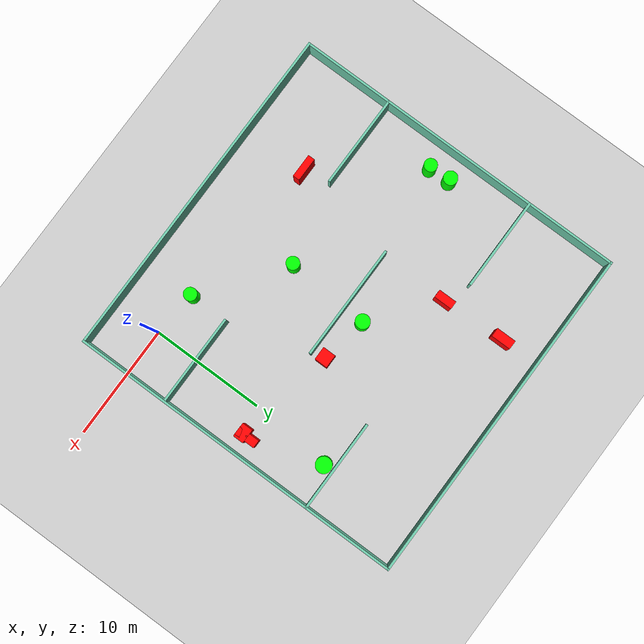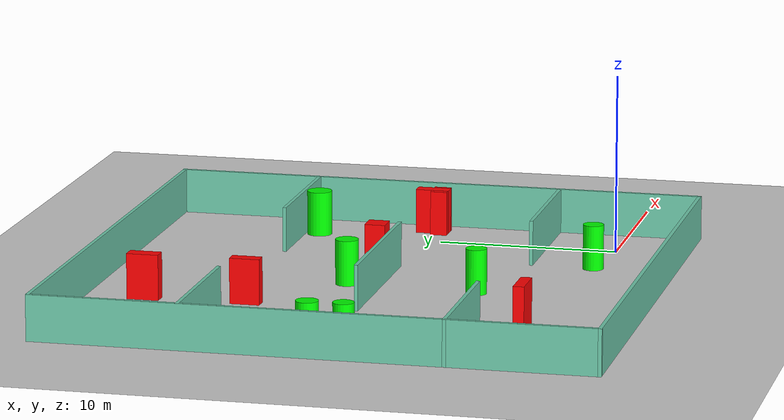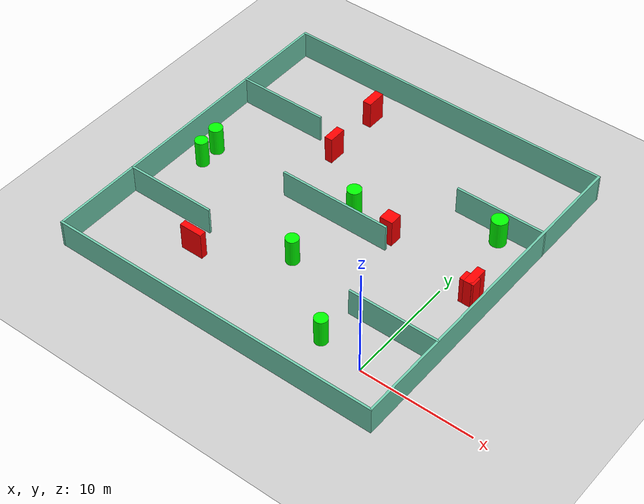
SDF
<sdf version="1.7">
 <world name="default">
  <light name="sun" type="directional">
   <pose>0 0 10 0 -0 0</pose>
   <diffuse>0.8 0.8 0.8 1</diffuse>
   <specular>0.2 0.2 0.2 1</specular>
   <attenuation>
    <range>1000</range>
    <constant>0.9</constant>
    <linear>0.01</linear>
    <quadratic>0.001</quadratic>
   </attenuation>
   <direction>-0.5 0.1 -0.9</direction>
   <spot><inner_angle>0</inner_angle><outer_angle>0</outer_angle><falloff>0</falloff></spot>
  </light>
  <model name="ground_plane">
   <static>1</static>
   <link name="link">
    <collision name="collision">
     <geometry><plane><normal>0 0 1</normal><size>100 100</size></plane></geometry>
     <surface>
      <contact><collide_bitmask>65535</collide_bitmask></contact>
      <friction><ode><mu>100</mu><mu2>50</mu2></ode></friction>
     </surface>
    </collision>
    <visual name="visual">
     <cast_shadows>0</cast_shadows>
     <geometry><plane><normal>0 0 1</normal><size>100 100</size></plane></geometry>
     <material>
      <script><uri>file://media/materials/scripts/gazebo.material</uri><name>Gazebo/Grey</name></script>
     </material>
    </visual>
   </link>
  </model>
  <gravity>0 0 -9.8</gravity>
  <magnetic_field>6e-06 2.3e-05 -4.2e-05</magnetic_field>
  <atmosphere type="adiabatic"/>
  <physics type="ode">
   <max_step_size>0.001</max_step_size>
   <real_time_factor>1</real_time_factor>
   <real_time_update_rate>1000</real_time_update_rate>
  </physics>
  <scene><ambient>0.4 0.4 0.4 1</ambient><background>0.7 0.7 0.7 1</background><shadows>1</shadows></scene>
  <spherical_coordinates>
   <surface_model>EARTH_WGS84</surface_model>
   <latitude_deg>0</latitude_deg>
   <longitude_deg>0</longitude_deg>
   <elevation>0</elevation>
   <heading_deg>0</heading_deg>
  </spherical_coordinates>
  <model name="my_base_walls">
   <link name="Wall_10">
    <collision name="Wall_10_Collision">
     <geometry><box><size>8.2 0.2 2.5</size></box></geometry>
     <pose>0 0 1.25 0 -0 0</pose>
    </collision>
    <visual name="Wall_10_Visual">
     <pose>0 0 1.25 0 -0 0</pose>
     <geometry><box><size>8.2 0.2 2.5</size></box></geometry>
     <material>
      <script><uri>file://media/materials/scripts/gazebo.material</uri><name>Gazebo/Grey</name></script>
      <ambient>0.435294 0.796078 0.67451 1</ambient>
     </material>
     <meta><layer>0</layer></meta>
    </visual>
    <pose>-11 -7 0 0 -0 0</pose>
   </link>
   <link name="Wall_12">
    <collision name="Wall_12_Collision">
     <geometry><box><size>8.2 0.2 2.5</size></box></geometry>
     <pose>0 0 1.25 0 -0 0</pose>
    </collision>
    <visual name="Wall_12_Visual">
     <pose>0 0 1.25 0 -0 0</pose>
     <geometry><box><size>8.2 0.2 2.5</size></box></geometry>
     <material>
      <script><uri>file://media/materials/scripts/gazebo.material</uri><name>Gazebo/Grey</name></script>
      <ambient>0.435294 0.796078 0.67451 1</ambient>
     </material>
     <meta><layer>0</layer></meta>
    </visual>
    <pose>-11 7 0 0 -0 0</pose>
   </link>
   <link name="Wall_14">
    <collision name="Wall_14_Collision">
     <geometry><box><size>8.2 0.2 2.5</size></box></geometry>
     <pose>0 0 1.25 0 -0 0</pose>
    </collision>
    <visual name="Wall_14_Visual">
     <pose>0 0 1.25 0 -0 0</pose>
     <geometry><box><size>8.2 0.2 2.5</size></box></geometry>
     <material>
      <script><uri>file://media/materials/scripts/gazebo.material</uri><name>Gazebo/Grey</name></script>
      <ambient>0.435294 0.796078 0.67451 1</ambient>
     </material>
     <meta><layer>0</layer></meta>
    </visual>
    <pose>11 7 0 0 -0 3.14159</pose>
   </link>
   <link name="Wall_16">
    <collision name="Wall_16_Collision">
     <geometry><box><size>10.2 0.2 2.5</size></box></geometry>
     <pose>0 0 1.25 0 -0 0</pose>
    </collision>
    <visual name="Wall_16_Visual">
     <pose>0 0 1.25 0 -0 0</pose>
     <geometry><box><size>10.2 0.2 2.5</size></box></geometry>
     <material>
      <script><uri>file://media/materials/scripts/gazebo.material</uri><name>Gazebo/Grey</name></script>
      <ambient>0.435294 0.796078 0.67451 1</ambient>
     </material>
     <meta><layer>0</layer></meta>
    </visual>
    <pose>0 0 0 0 -0 3.14159</pose>
   </link>
   <link name="Wall_2">
    <collision name="Wall_2_Collision">
     <geometry><box><size>30.2 0.2 2.5</size></box></geometry>
     <pose>0 0 1.25 0 -0 0</pose>
    </collision>
    <visual name="Wall_2_Visual">
     <pose>0 0 1.25 0 -0 0</pose>
     <geometry><box><size>30.2 0.2 2.5</size></box></geometry>
     <material>
      <script><uri>file://media/materials/scripts/gazebo.material</uri><name>Gazebo/Grey</name></script>
      <ambient>0.435294 0.796078 0.67451 1</ambient>
     </material>
     <meta><layer>0</layer></meta>
    </visual>
    <pose>0 -15 0 0 -0 3.14159</pose>
   </link>
   <link name="Wall_3">
    <collision name="Wall_3_Collision">
     <geometry><box><size>30.2 0.2 2.5</size></box></geometry>
     <pose>0 0 1.25 0 -0 0</pose>
    </collision>
    <visual name="Wall_3_Visual">
     <pose>0 0 1.25 0 -0 0</pose>
     <geometry><box><size>30.2 0.2 2.5</size></box></geometry>
     <material>
      <script><uri>file://media/materials/scripts/gazebo.material</uri><name>Gazebo/Grey</name></script>
      <ambient>0.435294 0.796078 0.67451 1</ambient>
     </material>
     <meta><layer>0</layer></meta>
    </visual>
    <pose>-15 0 0 0 -0 1.5708</pose>
   </link>
   <link name="Wall_4">
    <collision name="Wall_4_Collision">
     <geometry><box><size>30.2 0.2 2.5</size></box></geometry>
     <pose>0 0 1.25 0 -0 0</pose>
    </collision>
    <visual name="Wall_4_Visual">
     <pose>0 0 1.25 0 -0 0</pose>
     <geometry><box><size>30.2 0.2 2.5</size></box></geometry>
     <material>
      <script><uri>file://media/materials/scripts/gazebo.material</uri><name>Gazebo/Grey</name></script>
      <ambient>0.435294 0.796078 0.67451 1</ambient>
     </material>
     <meta><layer>0</layer></meta>
    </visual>
    <pose>0 15 0 0 -0 0</pose>
   </link>
   <link name="Wall_6">
    <collision name="Wall_6_Collision">
     <geometry><box><size>30.2 0.2 2.5</size></box></geometry>
     <pose>0 0 1.25 0 -0 0</pose>
    </collision>
    <visual name="Wall_6_Visual">
     <pose>0 0 1.25 0 -0 0</pose>
     <geometry><box><size>30.2 0.2 2.5</size></box></geometry>
     <material>
      <script><uri>file://media/materials/scripts/gazebo.material</uri><name>Gazebo/Grey</name></script>
      <ambient>0.435294 0.796078 0.67451 1</ambient>
     </material>
     <meta><layer>0</layer></meta>
    </visual>
    <pose>15 0 0 0 -0 1.5708</pose>
   </link>
   <link name="Wall_8">
    <collision name="Wall_8_Collision">
     <geometry><box><size>8.2 0.2 2.5</size></box></geometry>
     <pose>0 0 1.25 0 -0 0</pose>
    </collision>
    <visual name="Wall_8_Visual">
     <pose>0 0 1.25 0 -0 0</pose>
     <geometry><box><size>8.2 0.2 2.5</size></box></geometry>
     <material>
      <script><uri>file://media/materials/scripts/gazebo.material</uri><name>Gazebo/Grey</name></script>
      <ambient>0.435294 0.796078 0.67451 1</ambient>
     </material>
     <meta><layer>0</layer></meta>
    </visual>
    <pose>11 -7 0 0 -0 3.14159</pose>
   </link>
   <static>1</static>
   <pose>-11 11 0 0 -0 0</pose>
  </model>
  <model name="cylinder1">
   <static>1</static>
   <link name="link">
    <inertial>
     <mass>1</mass>
     <inertia><ixx>0.5</ixx><ixy>0</ixy><ixz>0</ixz><iyy>0.5</iyy><iyz>0</iyz><izz>1</izz></inertia>
    </inertial>
    <collision name="collision">
     <geometry><cylinder><radius>0.6326235134200797</radius><length>2.5</length></cylinder></geometry>
    </collision>
    <visual name="visual">
     <geometry><cylinder><radius>0.6326235134200797</radius><length>2.5</length></cylinder></geometry>
     <material>
      <ambient>0 1 0 1</ambient>
      <diffuse>0 1 0 1</diffuse>
      <specular>0.1 0.1 0.1 1</specular>
      <emissive>0 0 0 0</emissive>
     </material>
    </visual>
   </link>
   <pose>-10.447687352203399 12.860028557701902 1.25 0 0 0</pose>
  </model>
  <model name="cylinder2">
   <static>1</static>
   <link name="link">
    <inertial>
     <mass>1</mass>
     <inertia><ixx>0.5</ixx><ixy>0</ixy><ixz>0</ixz><iyy>0.5</iyy><iyz>0</iyz><izz>1</izz></inertia>
    </inertial>
    <collision name="collision">
     <geometry><cylinder><radius>0.5718369582138213</radius><length>2.5</length></cylinder></geometry>
    </collision>
    <visual name="visual">
     <geometry><cylinder><radius>0.5718369582138213</radius><length>2.5</length></cylinder></geometry>
     <material>
      <ambient>0 1 0 1</ambient>
      <diffuse>0 1 0 1</diffuse>
      <specular>0.1 0.1 0.1 1</specular>
      <emissive>0 0 0 0</emissive>
     </material>
    </visual>
   </link>
   <pose>-4.027883850889239 0.5298982895569191 1.25 0 0 0</pose>
  </model>
  <model name="cylinder3">
   <static>1</static>
   <link name="link">
    <inertial>
     <mass>1</mass>
     <inertia><ixx>0.5</ixx><ixy>0</ixy><ixz>0</ixz><iyy>0.5</iyy><iyz>0</iyz><izz>1</izz></inertia>
    </inertial>
    <collision name="collision">
     <geometry><cylinder><radius>0.6978847876534156</radius><length>2.5</length></cylinder></geometry>
    </collision>
    <visual name="visual">
     <geometry><cylinder><radius>0.6978847876534156</radius><length>2.5</length></cylinder></geometry>
     <material>
      <ambient>0 1 0 1</ambient>
      <diffuse>0 1 0 1</diffuse>
      <specular>0.1 0.1 0.1 1</specular>
      <emissive>0 0 0 0</emissive>
     </material>
    </visual>
   </link>
   <pose>0.5002712648977976 17.129566025303042 1.25 0 0 0</pose>
  </model>
  <model name="cylinder4">
   <static>1</static>
   <link name="link">
    <inertial>
     <mass>1</mass>
     <inertia><ixx>0.5</ixx><ixy>0</ixy><ixz>0</ixz><iyy>0.5</iyy><iyz>0</iyz><izz>1</izz></inertia>
    </inertial>
    <collision name="collision">
     <geometry><cylinder><radius>0.6065195631954055</radius><length>2.5</length></cylinder></geometry>
    </collision>
    <visual name="visual">
     <geometry><cylinder><radius>0.6065195631954055</radius><length>2.5</length></cylinder></geometry>
     <material>
      <ambient>0 1 0 1</ambient>
      <diffuse>0 1 0 1</diffuse>
      <specular>0.1 0.1 0.1 1</specular>
      <emissive>0 0 0 0</emissive>
     </material>
    </visual>
   </link>
   <pose>-23.919587757541603 11.674622293765005 1.25 0 0 0</pose>
  </model>
  <model name="cylinder5">
   <static>1</static>
   <link name="link">
    <inertial>
     <mass>1</mass>
     <inertia><ixx>0.5</ixx><ixy>0</ixy><ixz>0</ixz><iyy>0.5</iyy><iyz>0</iyz><izz>1</izz></inertia>
    </inertial>
    <collision name="collision">
     <geometry><cylinder><radius>0.5740314683055507</radius><length>2.5</length></cylinder></geometry>
    </collision>
    <visual name="visual">
     <geometry><cylinder><radius>0.5740314683055507</radius><length>2.5</length></cylinder></geometry>
     <material>
      <ambient>0 1 0 1</ambient>
      <diffuse>0 1 0 1</diffuse>
      <specular>0.1 0.1 0.1 1</specular>
      <emissive>0 0 0 0</emissive>
     </material>
    </visual>
   </link>
   <pose>-10.885801519644332 5.612700519127065 1.25 0 0 0</pose>
  </model>
  <model name="cylinder6">
   <static>1</static>
   <link name="link">
    <inertial>
     <mass>1</mass>
     <inertia><ixx>0.5</ixx><ixy>0</ixy><ixz>0</ixz><iyy>0.5</iyy><iyz>0</iyz><izz>1</izz></inertia>
    </inertial>
    <collision name="collision">
     <geometry><cylinder><radius>0.5653870489380938</radius><length>2.5</length></cylinder></geometry>
    </collision>
    <visual name="visual">
     <geometry><cylinder><radius>0.5653870489380938</radius><length>2.5</length></cylinder></geometry>
     <material>
      <ambient>0 1 0 1</ambient>
      <diffuse>0 1 0 1</diffuse>
      <specular>0.1 0.1 0.1 1</specular>
      <emissive>0 0 0 0</emissive>
     </material>
    </visual>
   </link>
   <pose>-23.822426403660835 9.77470559864047 1.25 0 0 0</pose>
  </model>
  <model name="box1">
   <static>1</static>
   <link name="link">
    <inertial>
     <mass>1</mass>
     <inertia><ixx>0.083</ixx><ixy>0</ixy><ixz>0</ixz><iyy>0.083</iyy><iyz>0</iyz><izz>0.083</izz></inertia>
    </inertial>
    <collision name="collision">
     <geometry><box><size>0.7082001337500283 1.63127324716522 2.5</size></box></geometry>
    </collision>
    <visual name="visual">
     <geometry><box><size>0.7082001337500283 1.63127324716522 2.5</size></box></geometry>
     <material>
      <ambient>1 0 0 1</ambient>
      <diffuse>1 0 0 1</diffuse>
      <specular>0.1 0.1 0.1 1</specular>
      <emissive>0 0 0 0</emissive>
     </material>
    </visual>
    <sensor name="my_contact" type="contact">
     <contact><collision>box_collision</collision><topic>__default_topic__</topic></contact>
    </sensor>
   </link>
   <pose>-15.774716043908663 17.09883647776653 1.25 0 0 0</pose>
  </model>
  <model name="box2">
   <static>1</static>
   <link name="link">
    <inertial>
     <mass>1</mass>
     <inertia><ixx>0.083</ixx><ixy>0</ixy><ixz>0</ixz><iyy>0.083</iyy><iyz>0</iyz><izz>0.083</izz></inertia>
    </inertial>
    <collision name="collision">
     <geometry><box><size>0.7840444708132202 1.749478854988398 2.5</size></box></geometry>
    </collision>
    <visual name="visual">
     <geometry><box><size>0.7840444708132202 1.749478854988398 2.5</size></box></geometry>
     <material>
      <ambient>1 0 0 1</ambient>
      <diffuse>1 0 0 1</diffuse>
      <specular>0.1 0.1 0.1 1</specular>
      <emissive>0 0 0 0</emissive>
     </material>
    </visual>
    <sensor name="my_contact" type="contact">
     <contact><collision>box_collision</collision><topic>__default_topic__</topic></contact>
    </sensor>
   </link>
   <pose>-16.00373247137825 22.659798667156 1.25 0 0 0</pose>
  </model>
  <model name="box3">
   <static>1</static>
   <link name="link">
    <inertial>
     <mass>1</mass>
     <inertia><ixx>0.083</ixx><ixy>0</ixy><ixz>0</ixz><iyy>0.083</iyy><iyz>0</iyz><izz>0.083</izz></inertia>
    </inertial>
    <collision name="collision">
     <geometry><box><size>1.2705958014821177 0.9392378080669088 2.5</size></box></geometry>
    </collision>
    <visual name="visual">
     <geometry><box><size>1.2705958014821177 0.9392378080669088 2.5</size></box></geometry>
     <material>
      <ambient>1 0 0 1</ambient>
      <diffuse>1 0 0 1</diffuse>
      <specular>0.1 0.1 0.1 1</specular>
      <emissive>0 0 0 0</emissive>
     </material>
    </visual>
    <sensor name="my_contact" type="contact">
     <contact><collision>box_collision</collision><topic>__default_topic__</topic></contact>
    </sensor>
   </link>
   <pose>2.279328487519514 10.50383445668394 1.25 0 0 0</pose>
  </model>
  <model name="box4">
   <static>1</static>
   <link name="link">
    <inertial>
     <mass>1</mass>
     <inertia><ixx>0.083</ixx><ixy>0</ixy><ixz>0</ixz><iyy>0.083</iyy><iyz>0</iyz><izz>0.083</izz></inertia>
    </inertial>
    <collision name="collision">
     <geometry><box><size>0.7190314804204597 1.8527979499987017 2.5</size></box></geometry>
    </collision>
    <visual name="visual">
     <geometry><box><size>0.7190314804204597 1.8527979499987017 2.5</size></box></geometry>
     <material>
      <ambient>1 0 0 1</ambient>
      <diffuse>1 0 0 1</diffuse>
      <specular>0.1 0.1 0.1 1</specular>
      <emissive>0 0 0 0</emissive>
     </material>
    </visual>
    <sensor name="my_contact" type="contact">
     <contact><collision>box_collision</collision><topic>__default_topic__</topic></contact>
    </sensor>
   </link>
   <pose>2.3653026143941354 10.950912736957536 1.25 0 0 0</pose>
  </model>
  <model name="box5">
   <static>1</static>
   <link name="link">
    <inertial>
     <mass>1</mass>
     <inertia><ixx>0.083</ixx><ixy>0</ixy><ixz>0</ixz><iyy>0.083</iyy><iyz>0</iyz><izz>0.083</izz></inertia>
    </inertial>
    <collision name="collision">
     <geometry><box><size>2.076020290729205 0.5926418230110702 2.5</size></box></geometry>
    </collision>
    <visual name="visual">
     <geometry><box><size>2.076020290729205 0.5926418230110702 2.5</size></box></geometry>
     <material>
      <ambient>1 0 0 1</ambient>
      <diffuse>1 0 0 1</diffuse>
      <specular>0.1 0.1 0.1 1</specular>
      <emissive>0 0 0 0</emissive>
     </material>
    </visual>
    <sensor name="my_contact" type="contact">
     <contact><collision>box_collision</collision><topic>__default_topic__</topic></contact>
    </sensor>
   </link>
   <pose>-17.584110382976 1.7092963719617629 1.25 0 0 0</pose>
  </model>
  <model name="box6">
   <static>1</static>
   <link name="link">
    <inertial>
     <mass>1</mass>
     <inertia><ixx>0.083</ixx><ixy>0</ixy><ixz>0</ixz><iyy>0.083</iyy><iyz>0</iyz><izz>0.083</izz></inertia>
    </inertial>
    <collision name="collision">
     <geometry><box><size>1.1771590285645925 1.1475584074504976 2.5</size></box></geometry>
    </collision>
    <visual name="visual">
     <geometry><box><size>1.1771590285645925 1.1475584074504976 2.5</size></box></geometry>
     <material>
      <ambient>1 0 0 1</ambient>
      <diffuse>1 0 0 1</diffuse>
      <specular>0.1 0.1 0.1 1</specular>
      <emissive>0 0 0 0</emissive>
     </material>
    </visual>
    <sensor name="my_contact" type="contact">
     <contact><collision>box_collision</collision><topic>__default_topic__</topic></contact>
    </sensor>
   </link>
   <pose>-6.376172261050915 12.159063805347724 1.25 0 0 0</pose>
  </model>
 </world>
</sdf>
